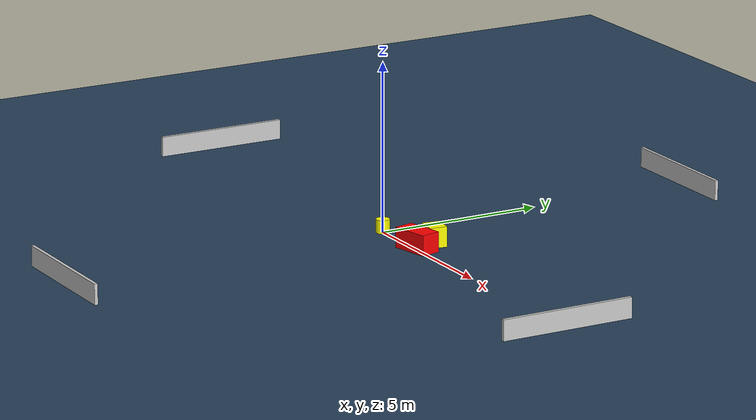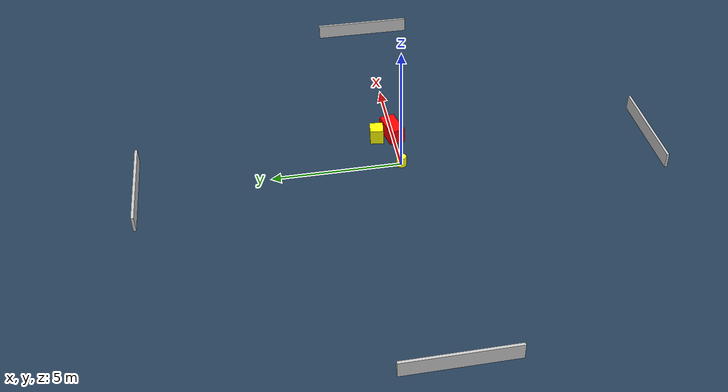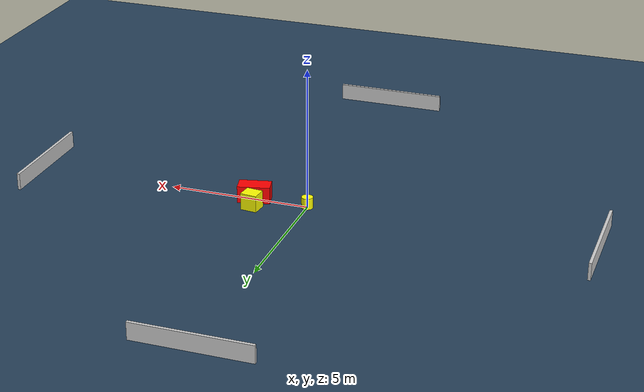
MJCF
<?xml version="1.0" ?>
<mujoco model="generated_environment">
  <option timestep="0.01" integrator="RK4" cone="elliptic"/>
  <default>
    <geom density="1"/>
  </default>
  <asset>
    <texture builtin="gradient" height="3072" name="skybox" rgb1="0.3 0.5 0.7" rgb2="0 0 0" type="skybox" width="512"/>
    <texture builtin="checker" height="300" name="groundplane" rgb1="0.2 0.3 0.4" rgb2="0.1 0.2 0.3" type="2d" width="300"/>
    <material name="groundplane" reflectance="0.2" texrepeat="5 5" texture="groundplane"/>
  </asset>
  <worldbody>
    <light dir="0 0 -1" directional="true" pos="0 0 1.5"/>
    <geom condim="3" friction="0.5 0.005 0.001" material="groundplane" name="floor" pos="0 0 0" size="0 0 0.05" type="plane"/>
    <body name="walls">
      <geom name="wall_1" condim="4" pos="-10.0 0.0 0.3" rgba="0.800000011920929 0.800000011920929 0.800000011920929 1.0" size="0.05 2.0 0.3" type="box"/>
      <geom name="wall_2" condim="4" pos="10.0 0.0 0.3" rgba="0.800000011920929 0.800000011920929 0.800000011920929 1.0" size="0.05 2.0 0.3" type="box"/>
      <geom name="wall_3" condim="4" pos="0.0 -10.0 0.3" rgba="0.800000011920929 0.800000011920929 0.800000011920929 1.0" size="2.0 0.05 0.3" type="box"/>
      <geom name="wall_4" condim="4" pos="0.0 10.0 0.3" rgba="0.800000011920929 0.800000011920929 0.800000011920929 1.0" size="2.0 0.05 0.3" type="box"/>
    </body>
    <body name="robot">
      <joint name="joint_x" type="slide" pos="0 0 0" axis="1 0 0"/>
      <joint name="joint_y" type="slide" pos="0 0 0" axis="0 1 0"/>
      <geom name="robot" type="cylinder" pos="0.0 0.0 0.2" size="0.2 0.2 0.0" mass="5.0" friction="1.0 0.005 0.0001" condim="4" rgba="1.0 1.0 0.0 1.0"/>
    </body>
    <body name="obstacle_1_movable">
      <geom name="obstacle_1_movable" condim="4" pos="1.771951748966454 0.6722912214663302 0.3" euler="0 0 83.49328489897722" friction="0.0 0.005 0.001" rgba="1.0 1.0 0.0 1.0" size="0.26180215552387015 0.29287527415103465 0.3" type="box" mass="0.1"/>
      <joint type="free"/>
    </body>
    <body name="obstacle_2_static">
      <geom name="obstacle_2_static" condim="4" pos="1.9172648974501476 0.023326924272477782 0.3" euler="0 0 12.962653755919025" friction="0.0 0.005 0.001" rgba="1.0 0.0 0.0 1.0" size="0.5669432091956256 0.2991053262239338 0.3" type="box"/>
    </body>
  </worldbody>
  <actuator>
    <motor name="actuator_x" joint="joint_x" gear="1" ctrlrange="-1 1"/>
    <motor name="actuator_y" joint="joint_y" gear="1" ctrlrange="-1 1"/>
  </actuator>
</mujoco>
